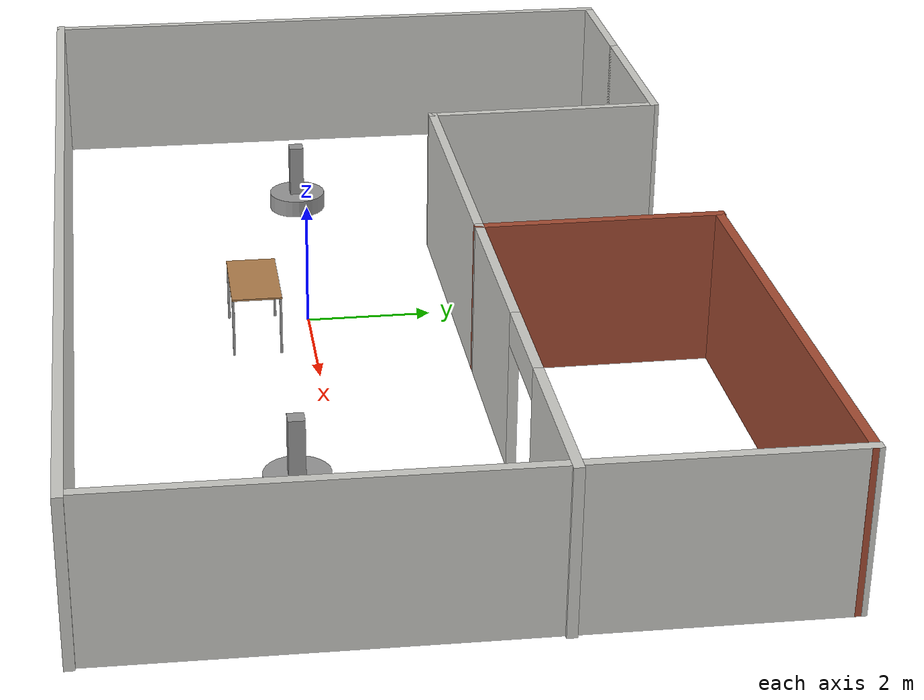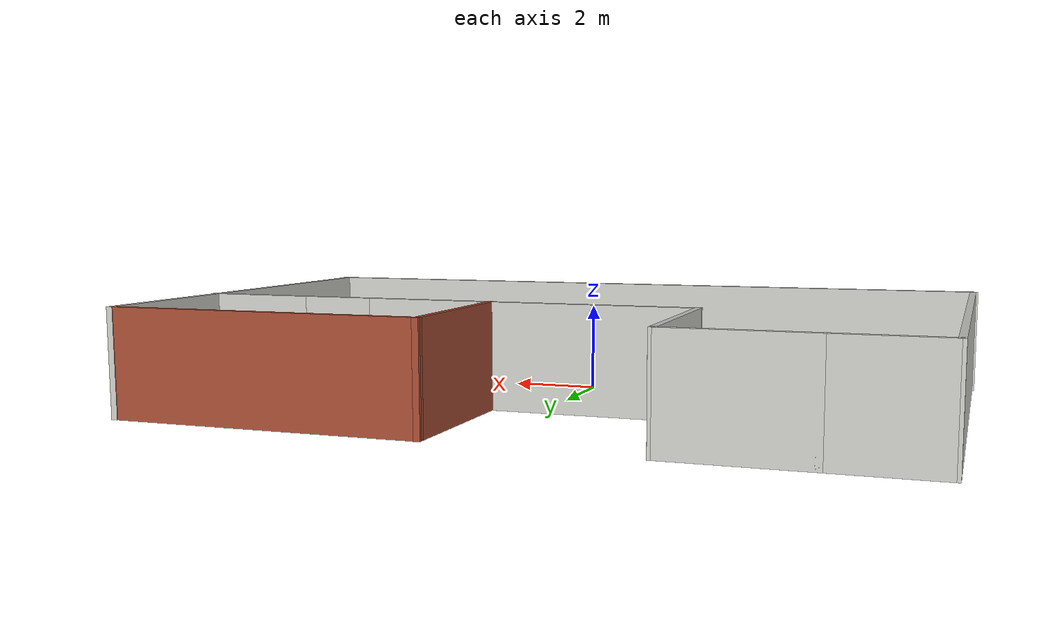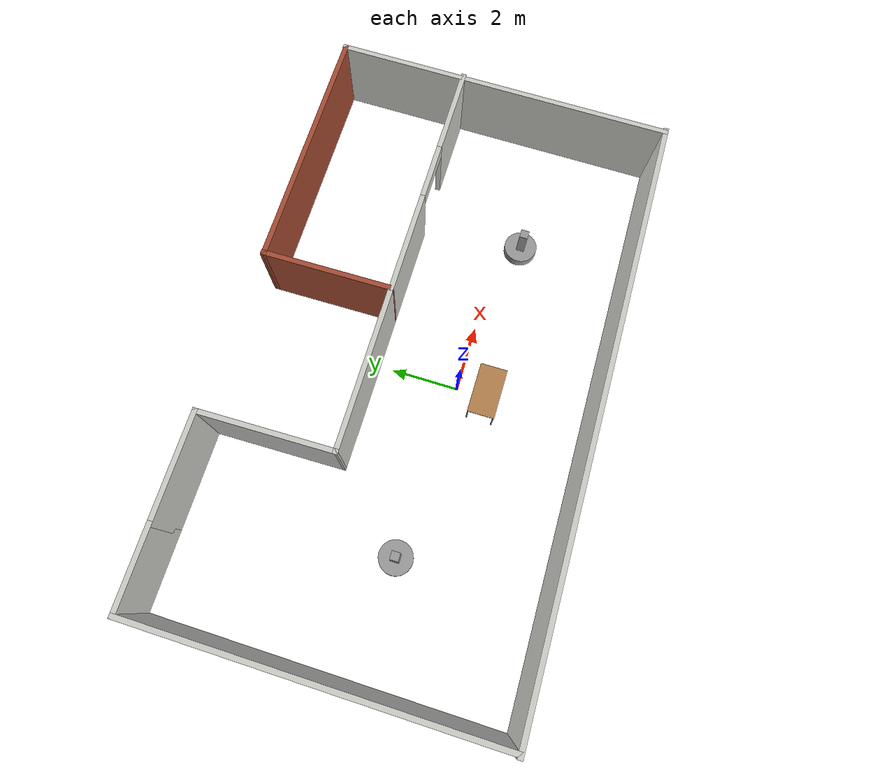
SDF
<?xml version='1.0'?>
<sdf version='1.7'>
  <model name='building_and_obj'>
    <model name='building'>
      <pose>0.129082 1.24162 -0.218762 0 -0 0</pose>
      <link name='Wall_10'>
        <collision name='Wall_10_Collision'>
          <geometry>
            <box>
              <size>10.3107 0.15 2.5</size>
            </box>
          </geometry>
          <pose>0 0 1.25 0 -0 0</pose>
          <surface/>
        </collision>
        <visual name='Wall_10_Visual'>
          <pose>0 0 1.25 0 -0 0</pose>
          <geometry>
            <box>
              <size>10.3107 0.15 2.5</size>
            </box>
          </geometry>
          <material>
            <script>
              <uri>file://media/materials/scripts/gazebo.material</uri>
              <name>Gazebo/CeilingTiled</name>
            </script>
            <ambient>0.435294 0.796078 0.67451 1</ambient>
          </material>
          <meta>
            <layer>0</layer>
          </meta>
        </visual>
        <pose>8.82308 0.001226 0 0 -0 -1.58217</pose>
      </link>
      <link name='Wall_11'>
        <collision name='Wall_11_Collision'>
          <geometry>
            <box>
              <size>17.8668 0.15 2.5</size>
            </box>
          </geometry>
          <pose>0 0 1.25 0 -0 0</pose>
          <surface/>
        </collision>
        <visual name='Wall_11_Visual'>
          <pose>0 0 1.25 0 -0 0</pose>
          <geometry>
            <box>
              <size>17.8668 0.15 2.5</size>
            </box>
          </geometry>
          <material>
            <script>
              <uri>file://media/materials/scripts/gazebo.material</uri>
              <name>Gazebo/CeilingTiled</name>
            </script>
            <ambient>0.435294 0.796078 0.67451 1</ambient>
          </material>
          <meta>
            <layer>0</layer>
          </meta>
        </visual>
        <pose>-0.039606 -5.14818 0 0 -0 -3.13376</pose>
      </link>
      <link name='Wall_12'>
        <collision name='Wall_12_Collision'>
          <geometry>
            <box>
              <size>10.5618 0.15 2.5</size>
            </box>
          </geometry>
          <pose>0 0 1.25 0 -0 0</pose>
          <surface/>
        </collision>
        <visual name='Wall_12_Visual'>
          <pose>0 0 1.25 0 -0 0</pose>
          <geometry>
            <box>
              <size>10.5618 0.15 2.5</size>
            </box>
          </geometry>
          <material>
            <script>
              <uri>file://media/materials/scripts/gazebo.material</uri>
              <name>Gazebo/CeilingTiled</name>
            </script>
            <ambient>0.435294 0.796078 0.67451 1</ambient>
          </material>
          <meta>
            <layer>0</layer>
          </meta>
        </visual>
        <pose>-8.82658 0.011386 0 0 -0 1.56601</pose>
      </link>
      <link name='Wall_13'>
        <collision name='Wall_13_Collision'>
          <geometry>
            <box>
              <size>2.5 0.15 2.5</size>
            </box>
          </geometry>
          <pose>0 0 1.25 0 -0 0</pose>
          <surface/>
        </collision>
        <visual name='Wall_13_Visual'>
          <pose>0 0 1.25 0 -0 0</pose>
          <geometry>
            <box>
              <size>2.5 0.15 2.5</size>
            </box>
          </geometry>
          <material>
            <script>
              <uri>file://media/materials/scripts/gazebo.material</uri>
              <name>Gazebo/CeilingTiled</name>
            </script>
            <ambient>0.435294 0.796078 0.67451 1</ambient>
          </material>
          <meta>
            <layer>0</layer>
          </meta>
        </visual>
        <pose>-7.62667 5.21722 0 0 -0 0</pose>
      </link>
      <link name='Wall_18'>
        <pose>5.22332 1.26722 0 0 -0 0</pose>
        <visual name='Wall_18_Visual_0'>
          <pose>-2.18631 0 1.25 0 -0 0</pose>
          <geometry>
            <box>
              <size>3.12738 0.15 2.5</size>
            </box>
          </geometry>
          <material>
            <script>
              <uri>file://media/materials/scripts/gazebo.material</uri>
              <name>Gazebo/CeilingTiled</name>
            </script>
            <ambient>0.435294 0.796078 0.67451 1</ambient>
          </material>
          <meta>
            <layer>0</layer>
          </meta>
        </visual>
        <collision name='Wall_18_Collision_0'>
          <geometry>
            <box>
              <size>3.12738 0.15 2.5</size>
            </box>
          </geometry>
          <pose>-2.18631 0 1.25 0 -0 0</pose>
          <surface/>
        </collision>
        <visual name='Wall_18_Visual_1'>
          <pose>2.41596 0 1.25 0 -0 0</pose>
          <geometry>
            <box>
              <size>2.66807 0.15 2.5</size>
            </box>
          </geometry>
          <material>
            <script>
              <uri>file://media/materials/scripts/gazebo.material</uri>
              <name>Gazebo/CeilingTiled</name>
            </script>
            <ambient>0.435294 0.796078 0.67451 1</ambient>
          </material>
          <meta>
            <layer>0</layer>
          </meta>
        </visual>
        <collision name='Wall_18_Collision_1'>
          <geometry>
            <box>
              <size>2.66807 0.15 2.5</size>
            </box>
          </geometry>
          <pose>2.41596 0 1.25 0 -0 0</pose>
          <surface/>
        </collision>
        <visual name='Wall_18_Visual_2'>
          <pose>0.229656 0 2.25 0 -0 0</pose>
          <geometry>
            <box>
              <size>1.70454 0.15 0.5</size>
            </box>
          </geometry>
          <material>
            <script>
              <uri>file://media/materials/scripts/gazebo.material</uri>
              <name>Gazebo/CeilingTiled</name>
            </script>
            <ambient>0.435294 0.796078 0.67451 1</ambient>
          </material>
          <meta>
            <layer>0</layer>
          </meta>
        </visual>
        <collision name='Wall_18_Collision_2'>
          <geometry>
            <box>
              <size>1.70454 0.15 0.5</size>
            </box>
          </geometry>
          <pose>0.229656 0 2.25 0 -0 0</pose>
          <surface/>
        </collision>
      </link>
      <link name='Wall_5'>
        <collision name='Wall_5_Collision'>
          <geometry>
            <box>
              <size>3.25 0.15 2.5</size>
            </box>
          </geometry>
          <pose>0 0 1.25 0 -0 0</pose>
          <surface/>
        </collision>
        <visual name='Wall_5_Visual'>
          <pose>0 0 1.25 0 -0 0</pose>
          <geometry>
            <box>
              <size>3.25 0.15 2.5</size>
            </box>
          </geometry>
          <material>
            <script>
              <uri>file://media/materials/scripts/gazebo.material</uri>
              <name>Gazebo/CeilingTiled</name>
            </script>
            <ambient>0.435294 0.796078 0.67451 1</ambient>
          </material>
          <meta>
            <layer>0</layer>
          </meta>
        </visual>
        <pose>-4.90168 5.21722 0 0 -0 0</pose>
      </link>
      <link name='Wall_6'>
        <collision name='Wall_6_Collision'>
          <geometry>
            <box>
              <size>4.10032 0.15 2.5</size>
            </box>
          </geometry>
          <pose>0 0 1.25 0 -0 0</pose>
          <surface/>
        </collision>
        <visual name='Wall_6_Visual'>
          <pose>0 0 1.25 0 -0 0</pose>
          <geometry>
            <box>
              <size>4.10032 0.15 2.5</size>
            </box>
          </geometry>
          <material>
            <script>
              <uri>file://media/materials/scripts/gazebo.material</uri>
              <name>Gazebo/CeilingTiled</name>
            </script>
            <ambient>0.435294 0.796078 0.67451 1</ambient>
          </material>
          <meta>
            <layer>0</layer>
          </meta>
        </visual>
        <pose>-3.32667 3.24222 0 0 -0 -1.55814</pose>
      </link>
      <link name='Wall_7'>
        <collision name='Wall_7_Collision'>
          <geometry>
            <box>
              <size>5 0.15 2.5</size>
            </box>
          </geometry>
          <pose>0 0 1.25 0 -0 0</pose>
          <surface/>
        </collision>
        <visual name='Wall_7_Visual'>
          <pose>0 0 1.25 0 -0 0</pose>
          <geometry>
            <box>
              <size>5 0.15 2.5</size>
            </box>
          </geometry>
          <material>
            <script>
              <uri>file://media/materials/scripts/gazebo.material</uri>
              <name>Gazebo/CeilingTiled</name>
            </script>
            <ambient>0.435294 0.796078 0.67451 1</ambient>
          </material>
          <meta>
            <layer>0</layer>
          </meta>
        </visual>
        <pose>-0.876675 1.26722 0 0 -0 0</pose>
      </link>
      <link name='Wall_8'>
        <collision name='Wall_8_Collision'>
          <geometry>
            <box>
              <size>3.96407 0.15 2.5</size>
            </box>
          </geometry>
          <pose>0 0 1.25 0 -0 0</pose>
          <surface/>
        </collision>
        <visual name='Wall_8_Visual'>
          <pose>0 0 1.25 0 -0 0</pose>
          <geometry>
            <box>
              <size>3.96407 0.15 2.5</size>
            </box>
          </geometry>
          <material>
            <script>
              <uri>file://media/materials/scripts/gazebo.material</uri>
              <name>Gazebo/Bricks</name>
            </script>
            <ambient>0.435294 0.796078 0.67451 1</ambient>
          </material>
          <meta>
            <layer>0</layer>
          </meta>
        </visual>
        <pose>1.53958 3.17423 0 0 -0 1.57538</pose>
      </link>
      <link name='Wall_9'>
        <collision name='Wall_9_Collision'>
          <geometry>
            <box>
              <size>7.5 0.15 2.5</size>
            </box>
          </geometry>
          <pose>0 0 1.25 0 -0 0</pose>
          <surface/>
        </collision>
        <visual name='Wall_9_Visual'>
          <pose>0 0 1.25 0 -0 0</pose>
          <geometry>
            <box>
              <size>7.5 0.15 2.5</size>
            </box>
          </geometry>
          <material>
            <script>
              <uri>file://media/materials/scripts/gazebo.material</uri>
              <name>Gazebo/Bricks</name>
            </script>
            <ambient>0.988235 0.913725 0.309804 1</ambient>
          </material>
          <meta>
            <layer>0</layer>
          </meta>
        </visual>
        <pose>5.20584 5.06375 0 0 -0 0</pose>
      </link>
      <static>1</static>
    </model>
    <model name='cylinder_square'>
      <link name='link_1'>
        <inertial>
          <mass>1</mass>
          <inertia>
            <ixx>0.145833</ixx>
            <ixy>0</ixy>
            <ixz>0</ixz>
            <iyy>0.145833</iyy>
            <iyz>0</iyz>
            <izz>0.125</izz>
          </inertia>
          <pose>0 0 0 0 -0 0</pose>
        </inertial>
        <pose>0.00375 0.00375 0.025 0 -0 0</pose>
        <gravity>1</gravity>
        <self_collide>0</self_collide>
        <kinematic>0</kinematic>
        <enable_wind>0</enable_wind>
        <visual name='visual'>
          <pose>0 0 -0.3 0 -0 0</pose>
          <geometry>
            <cylinder>
              <radius>0.5</radius>
              <length>0.3</length>
            </cylinder>
          </geometry>
          <material>
            <lighting>1</lighting>
            <script>
              <uri>file://media/materials/scripts/gazebo.material</uri>
              <name>Gazebo/Grey</name>
            </script>
            <shader type='pixel'>
              <normal_map>__default__</normal_map>
            </shader>
            <ambient>0.3 0.3 0.3 1</ambient>
            <diffuse>0.7 0.7 0.7 1</diffuse>
            <specular>0.01 0.01 0.01 1</specular>
            <emissive>0 0 0 1</emissive>
          </material>
          <transparency>0</transparency>
          <cast_shadows>1</cast_shadows>
        </visual>
        <collision name='collision'>
          <laser_retro>0</laser_retro>
          <max_contacts>10</max_contacts>
          <pose>0 0 -0.3 0 -0 0</pose>
          <geometry>
            <cylinder>
              <radius>0.5</radius>
              <length>0.3</length>
            </cylinder>
          </geometry>
          <surface>
            <friction>
              <ode>
                <mu>1</mu>
                <mu2>1</mu2>
                <fdir1>0 0 0</fdir1>
                <slip1>0</slip1>
                <slip2>0</slip2>
              </ode>
              <torsional>
                <coefficient>1</coefficient>
                <patch_radius>0</patch_radius>
                <surface_radius>0</surface_radius>
                <use_patch_radius>1</use_patch_radius>
                <ode>
                  <slip>0</slip>
                </ode>
              </torsional>
            </friction>
            <bounce>
              <restitution_coefficient>0</restitution_coefficient>
              <threshold>1e+06</threshold>
            </bounce>
            <contact>
              <collide_without_contact>0</collide_without_contact>
              <collide_without_contact_bitmask>1</collide_without_contact_bitmask>
              <collide_bitmask>1</collide_bitmask>
              <ode>
                <soft_cfm>0</soft_cfm>
                <soft_erp>0.2</soft_erp>
                <kp>1e+13</kp>
                <kd>1</kd>
                <max_vel>0.01</max_vel>
                <min_depth>0</min_depth>
              </ode>
              <bullet>
                <split_impulse>1</split_impulse>
                <split_impulse_penetration_threshold>-0.01</split_impulse_penetration_threshold>
                <soft_cfm>0</soft_cfm>
                <soft_erp>0.2</soft_erp>
                <kp>1e+13</kp>
                <kd>1</kd>
              </bullet>
            </contact>
          </surface>
        </collision>
      </link>
      <link name='link_3'>
        <inertial>
          <mass>1</mass>
          <inertia>
            <ixx>0.166667</ixx>
            <ixy>0</ixy>
            <ixz>0</ixz>
            <iyy>0.166667</iyy>
            <iyz>0</iyz>
            <izz>0.166667</izz>
          </inertia>
          <pose>0 0 0 0 -0 0</pose>
        </inertial>
        <pose>-0.00375 -0.00375 -0.025 0 -0 0</pose>
        <gravity>1</gravity>
        <self_collide>0</self_collide>
        <kinematic>0</kinematic>
        <enable_wind>0</enable_wind>
        <visual name='visual'>
          <pose>0 0 0.3 0 -0 0</pose>
          <geometry>
            <box>
              <size>0.25 0.25 1</size>
            </box>
          </geometry>
          <material>
            <lighting>1</lighting>
            <script>
              <uri>file://media/materials/scripts/gazebo.material</uri>
              <name>Gazebo/Grey</name>
            </script>
            <shader type='pixel'>
              <normal_map>__default__</normal_map>
            </shader>
            <ambient>0.3 0.3 0.3 1</ambient>
            <diffuse>0.7 0.7 0.7 1</diffuse>
            <specular>0.01 0.01 0.01 1</specular>
            <emissive>0 0 0 1</emissive>
          </material>
          <transparency>0</transparency>
          <cast_shadows>1</cast_shadows>
        </visual>
        <collision name='collision'>
          <laser_retro>0</laser_retro>
          <max_contacts>10</max_contacts>
          <pose>0 0 0.3 0 -0 0</pose>
          <geometry>
            <box>
              <size>0.25 0.25 1</size>
            </box>
          </geometry>
          <surface>
            <friction>
              <ode>
                <mu>1</mu>
                <mu2>1</mu2>
                <fdir1>0 0 0</fdir1>
                <slip1>0</slip1>
                <slip2>0</slip2>
              </ode>
              <torsional>
                <coefficient>1</coefficient>
                <patch_radius>0</patch_radius>
                <surface_radius>0</surface_radius>
                <use_patch_radius>1</use_patch_radius>
                <ode>
                  <slip>0</slip>
                </ode>
              </torsional>
            </friction>
            <bounce>
              <restitution_coefficient>0</restitution_coefficient>
              <threshold>1e+06</threshold>
            </bounce>
            <contact>
              <collide_without_contact>0</collide_without_contact>
              <collide_without_contact_bitmask>1</collide_without_contact_bitmask>
              <collide_bitmask>1</collide_bitmask>
              <ode>
                <soft_cfm>0</soft_cfm>
                <soft_erp>0.2</soft_erp>
                <kp>1e+13</kp>
                <kd>1</kd>
                <max_vel>0.01</max_vel>
                <min_depth>0</min_depth>
              </ode>
              <bullet>
                <split_impulse>1</split_impulse>
                <split_impulse_penetration_threshold>-0.01</split_impulse_penetration_threshold>
                <soft_cfm>0</soft_cfm>
                <soft_erp>0.2</soft_erp>
                <kp>1e+13</kp>
                <kd>1</kd>
              </bullet>
            </contact>
          </surface>
        </collision>
      </link>
      <joint name='link_1_JOINT_1' type='revolute'>
        <parent>link_1</parent>
        <child>link_3</child>
        <pose>0 0 0 0 -0 0</pose>
        <axis>
          <xyz>0 0 1</xyz>
          <limit>
            <lower>-1.79769e+308</lower>
            <upper>1.79769e+308</upper>
            <effort>-1</effort>
            <velocity>-1</velocity>
          </limit>
          <dynamics>
            <spring_reference>0</spring_reference>
            <spring_stiffness>0</spring_stiffness>
            <damping>0</damping>
          </dynamics>
        </axis>
        <physics>
          <ode>
            <limit>
              <cfm>0</cfm>
              <erp>0.2</erp>
            </limit>
            <suspension>
              <cfm>0</cfm>
              <erp>0.2</erp>
            </suspension>
          </ode>
        </physics>
      </joint>
      <static>0</static>
      <allow_auto_disable>1</allow_auto_disable>
      <pose>-5.2014 0.274817 0.218762 0 -0 0</pose>
    </model>
    <model name='cylinder_square_clone'>
      <link name='link_1'>
        <inertial>
          <mass>1</mass>
          <inertia>
            <ixx>0.145833</ixx>
            <ixy>0</ixy>
            <ixz>0</ixz>
            <iyy>0.145833</iyy>
            <iyz>0</iyz>
            <izz>0.125</izz>
          </inertia>
          <pose>0 0 0 0 -0 0</pose>
        </inertial>
        <pose>0.00375 0.00375 0.025 0 -0 0</pose>
        <gravity>1</gravity>
        <self_collide>0</self_collide>
        <kinematic>0</kinematic>
        <enable_wind>0</enable_wind>
        <visual name='visual'>
          <pose>0 0 -0.3 0 -0 0</pose>
          <geometry>
            <cylinder>
              <radius>0.5</radius>
              <length>0.3</length>
            </cylinder>
          </geometry>
          <material>
            <lighting>1</lighting>
            <script>
              <uri>file://media/materials/scripts/gazebo.material</uri>
              <name>Gazebo/Grey</name>
            </script>
            <shader type='pixel'>
              <normal_map>__default__</normal_map>
            </shader>
            <ambient>0.3 0.3 0.3 1</ambient>
            <diffuse>0.7 0.7 0.7 1</diffuse>
            <specular>0.01 0.01 0.01 1</specular>
            <emissive>0 0 0 1</emissive>
          </material>
          <transparency>0</transparency>
          <cast_shadows>1</cast_shadows>
        </visual>
        <collision name='collision'>
          <laser_retro>0</laser_retro>
          <max_contacts>10</max_contacts>
          <pose>0 0 -0.3 0 -0 0</pose>
          <geometry>
            <cylinder>
              <radius>0.5</radius>
              <length>0.3</length>
            </cylinder>
          </geometry>
          <surface>
            <friction>
              <ode>
                <mu>1</mu>
                <mu2>1</mu2>
                <fdir1>0 0 0</fdir1>
                <slip1>0</slip1>
                <slip2>0</slip2>
              </ode>
              <torsional>
                <coefficient>1</coefficient>
                <patch_radius>0</patch_radius>
                <surface_radius>0</surface_radius>
                <use_patch_radius>1</use_patch_radius>
                <ode>
                  <slip>0</slip>
                </ode>
              </torsional>
            </friction>
            <bounce>
              <restitution_coefficient>0</restitution_coefficient>
              <threshold>1e+06</threshold>
            </bounce>
            <contact>
              <collide_without_contact>0</collide_without_contact>
              <collide_without_contact_bitmask>1</collide_without_contact_bitmask>
              <collide_bitmask>1</collide_bitmask>
              <ode>
                <soft_cfm>0</soft_cfm>
                <soft_erp>0.2</soft_erp>
                <kp>1e+13</kp>
                <kd>1</kd>
                <max_vel>0.01</max_vel>
                <min_depth>0</min_depth>
              </ode>
              <bullet>
                <split_impulse>1</split_impulse>
                <split_impulse_penetration_threshold>-0.01</split_impulse_penetration_threshold>
                <soft_cfm>0</soft_cfm>
                <soft_erp>0.2</soft_erp>
                <kp>1e+13</kp>
                <kd>1</kd>
              </bullet>
            </contact>
          </surface>
        </collision>
      </link>
      <link name='link_3'>
        <inertial>
          <mass>1</mass>
          <inertia>
            <ixx>0.166667</ixx>
            <ixy>0</ixy>
            <ixz>0</ixz>
            <iyy>0.166667</iyy>
            <iyz>0</iyz>
            <izz>0.166667</izz>
          </inertia>
          <pose>0 0 0 0 -0 0</pose>
        </inertial>
        <pose>-0.00375 -0.00375 -0.025 0 -0 0</pose>
        <gravity>1</gravity>
        <self_collide>0</self_collide>
        <kinematic>0</kinematic>
        <enable_wind>0</enable_wind>
        <visual name='visual'>
          <pose>0 0 0.3 0 -0 0</pose>
          <geometry>
            <box>
              <size>0.25 0.25 1</size>
            </box>
          </geometry>
          <material>
            <lighting>1</lighting>
            <script>
              <uri>file://media/materials/scripts/gazebo.material</uri>
              <name>Gazebo/Grey</name>
            </script>
            <shader type='pixel'>
              <normal_map>__default__</normal_map>
            </shader>
            <ambient>0.3 0.3 0.3 1</ambient>
            <diffuse>0.7 0.7 0.7 1</diffuse>
            <specular>0.01 0.01 0.01 1</specular>
            <emissive>0 0 0 1</emissive>
          </material>
          <transparency>0</transparency>
          <cast_shadows>1</cast_shadows>
        </visual>
        <collision name='collision'>
          <laser_retro>0</laser_retro>
          <max_contacts>10</max_contacts>
          <pose>0 0 0.3 0 -0 0</pose>
          <geometry>
            <box>
              <size>0.25 0.25 1</size>
            </box>
          </geometry>
          <surface>
            <friction>
              <ode>
                <mu>1</mu>
                <mu2>1</mu2>
                <fdir1>0 0 0</fdir1>
                <slip1>0</slip1>
                <slip2>0</slip2>
              </ode>
              <torsional>
                <coefficient>1</coefficient>
                <patch_radius>0</patch_radius>
                <surface_radius>0</surface_radius>
                <use_patch_radius>1</use_patch_radius>
                <ode>
                  <slip>0</slip>
                </ode>
              </torsional>
            </friction>
            <bounce>
              <restitution_coefficient>0</restitution_coefficient>
              <threshold>1e+06</threshold>
            </bounce>
            <contact>
              <collide_without_contact>0</collide_without_contact>
              <collide_without_contact_bitmask>1</collide_without_contact_bitmask>
              <collide_bitmask>1</collide_bitmask>
              <ode>
                <soft_cfm>0</soft_cfm>
                <soft_erp>0.2</soft_erp>
                <kp>1e+13</kp>
                <kd>1</kd>
                <max_vel>0.01</max_vel>
                <min_depth>0</min_depth>
              </ode>
              <bullet>
                <split_impulse>1</split_impulse>
                <split_impulse_penetration_threshold>-0.01</split_impulse_penetration_threshold>
                <soft_cfm>0</soft_cfm>
                <soft_erp>0.2</soft_erp>
                <kp>1e+13</kp>
                <kd>1</kd>
              </bullet>
            </contact>
          </surface>
        </collision>
      </link>
      <joint name='link_1_JOINT_1' type='revolute'>
        <parent>link_1</parent>
        <child>link_3</child>
        <pose>0 0 0 0 -0 0</pose>
        <axis>
          <xyz>0 0 1</xyz>
          <limit>
            <lower>-1.79769e+308</lower>
            <upper>1.79769e+308</upper>
            <effort>-1</effort>
            <velocity>-1</velocity>
          </limit>
          <dynamics>
            <spring_reference>0</spring_reference>
            <spring_stiffness>0</spring_stiffness>
            <damping>0</damping>
          </dynamics>
        </axis>
        <physics>
          <ode>
            <limit>
              <cfm>0</cfm>
              <erp>0.2</erp>
            </limit>
            <suspension>
              <cfm>0</cfm>
              <erp>0.2</erp>
            </suspension>
          </ode>
        </physics>
      </joint>
      <static>0</static>
      <allow_auto_disable>1</allow_auto_disable>
      <pose>5.06249 -0.637133 0.218762 0 -0 0</pose>
    </model>
    <model name='table'>
      <static>1</static>
      <link name='link'>
        <collision name='surface'>
          <pose>0 0 1 0 -0 0</pose>
          <geometry>
            <box>
              <size>1.5 0.8 0.03</size>
            </box>
          </geometry>
          <surface>
            <friction>
              <ode>
                <mu>0.6</mu>
                <mu2>0.6</mu2>
              </ode>
            </friction>
          </surface>
        </collision>
        <visual name='visual1'>
          <pose>0 0 1 0 -0 0</pose>
          <geometry>
            <box>
              <size>1.5 0.8 0.03</size>
            </box>
          </geometry>
          <material>
            <script>
              <uri>file://media/materials/scripts/gazebo.material</uri>
              <name>Gazebo/Wood</name>
            </script>
          </material>
        </visual>
        <collision name='front_left_leg'>
          <pose>0.68 0.38 0.5 0 -0 0</pose>
          <geometry>
            <cylinder>
              <radius>0.02</radius>
              <length>1</length>
            </cylinder>
          </geometry>
        </collision>
        <visual name='front_left_leg'>
          <pose>0.68 0.38 0.5 0 -0 0</pose>
          <geometry>
            <cylinder>
              <radius>0.02</radius>
              <length>1</length>
            </cylinder>
          </geometry>
          <material>
            <script>
              <uri>file://media/materials/scripts/gazebo.material</uri>
              <name>Gazebo/Grey</name>
            </script>
          </material>
        </visual>
        <collision name='front_right_leg'>
          <pose>0.68 -0.38 0.5 0 -0 0</pose>
          <geometry>
            <cylinder>
              <radius>0.02</radius>
              <length>1</length>
            </cylinder>
          </geometry>
        </collision>
        <visual name='front_right_leg'>
          <pose>0.68 -0.38 0.5 0 -0 0</pose>
          <geometry>
            <cylinder>
              <radius>0.02</radius>
              <length>1</length>
            </cylinder>
          </geometry>
          <material>
            <script>
              <uri>file://media/materials/scripts/gazebo.material</uri>
              <name>Gazebo/Grey</name>
            </script>
          </material>
        </visual>
        <collision name='back_right_leg'>
          <pose>-0.68 -0.38 0.5 0 -0 0</pose>
          <geometry>
            <cylinder>
              <radius>0.02</radius>
              <length>1</length>
            </cylinder>
          </geometry>
        </collision>
        <visual name='back_right_leg'>
          <pose>-0.68 -0.38 0.5 0 -0 0</pose>
          <geometry>
            <cylinder>
              <radius>0.02</radius>
              <length>1</length>
            </cylinder>
          </geometry>
          <material>
            <script>
              <uri>file://media/materials/scripts/gazebo.material</uri>
              <name>Gazebo/Grey</name>
            </script>
          </material>
        </visual>
        <collision name='back_left_leg'>
          <pose>-0.68 0.38 0.5 0 -0 0</pose>
          <geometry>
            <cylinder>
              <radius>0.02</radius>
              <length>1</length>
            </cylinder>
          </geometry>
        </collision>
        <visual name='back_left_leg'>
          <pose>-0.68 0.38 0.5 0 -0 0</pose>
          <geometry>
            <cylinder>
              <radius>0.02</radius>
              <length>1</length>
            </cylinder>
          </geometry>
          <material>
            <script>
              <uri>file://media/materials/scripts/gazebo.material</uri>
              <name>Gazebo/Grey</name>
            </script>
          </material>
        </visual>
      </link>
      <pose>0.009838 -0.879309 -0.218762 0 -0 0</pose>
    </model>
    <static>0</static>
    <allow_auto_disable>1</allow_auto_disable>
  </model>
</sdf>
